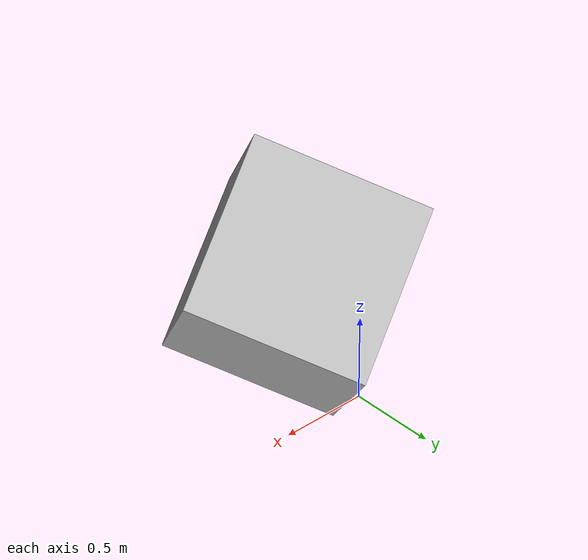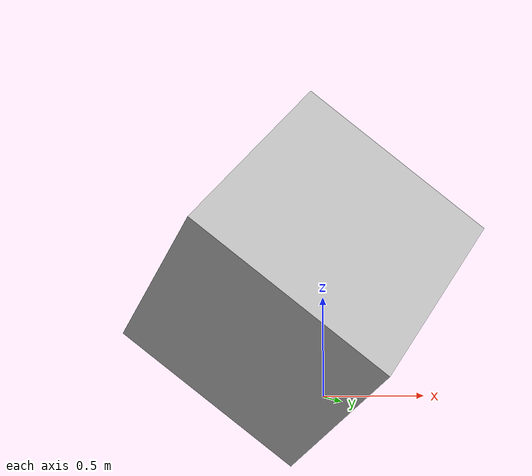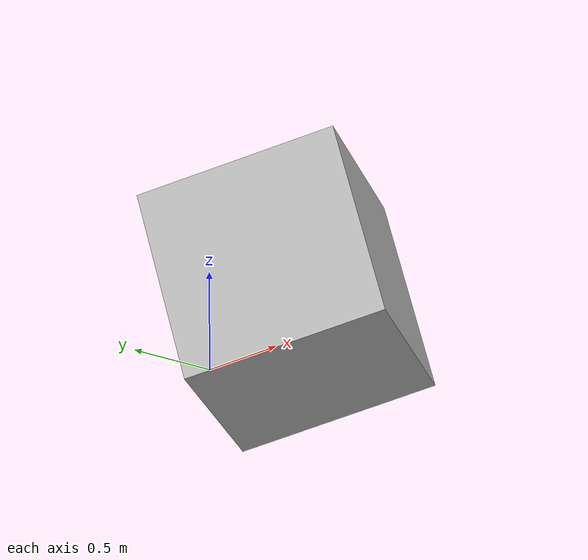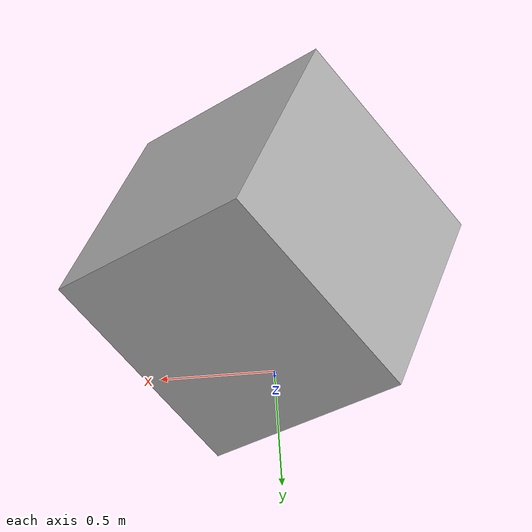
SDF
<?xml version='1.0'?>
<sdf version='1.6'>
		<model name="testlinkb">
			<self_collide>true</self_collide>
			<pose>0.0 0.0 0.0 0.0 0.0 0.0</pose>
			<!-- Start of parts of the pmodel testlinkb -->
			<!-- End of parts of the pmodel testlinkb -->

			<!-- Start of links of the pmodel testlinkb -->
			<!-- link full name is testlinkb::linkB -->
			<link name="1-linkB">
					<pose>0.0 -0.5 0.5 1.0471999645233154 -0.785398006439209 1.0471999645233154</pose>
					<inertial>
						<pose>0.0 0.0 0.0 0.0 0.0 0.0</pose>
						<inertia>
							<ixx>1.0</ixx>
							<ixy>0.0</ixy>
							<ixz>0.0</ixz>
							<iyy>1.0</iyy>
							<iyz>0.0</iyz>
							<izz>1.0</izz>
						</inertia>
						<mass>1.0</mass>
					</inertial>
					<!-- body full name is testlinkb::linkB::bodyB -->
					<collision name="1--bodyB">
						<laser_retro>0.0</laser_retro>
						<pose>0.0 0.0 0.0 0.0 0.0 0.0</pose>
						<geometry>
							<box>
								<size>1.0 1.0 1.0</size>
							</box>
						</geometry>
						<surface>
							<bounce>
								<restitution_coefficient>0.0</restitution_coefficient>
								<threshold>100000.0</threshold>
							</bounce>
							<friction>
								<ode>
									<mu>1.0</mu>
									<mu2>1.0</mu2>
									<fdir1>0.0 0.0 0.0</fdir1>
									<slip1>0.0</slip1>
									<slip2>0.0</slip2>
								</ode>
								<torsional>
									<coefficient>1.0</coefficient>
									<surface_radius>0.0</surface_radius>
								</torsional>
							</friction>
						</surface>
					</collision>
					<visual name="1--bodyB">
						<laser_retro>0.0</laser_retro>
						<pose>0.0 0.0 0.0 0.0 0.0 0.0</pose>
						<geometry>
							<box>
								<size>1.0 1.0 1.0</size>
							</box>
						</geometry>
						<surface>
							<bounce>
								<restitution_coefficient>0.0</restitution_coefficient>
								<threshold>100000.0</threshold>
							</bounce>
							<friction>
								<ode>
									<mu>1.0</mu>
									<mu2>1.0</mu2>
									<fdir1>0.0 0.0 0.0</fdir1>
									<slip1>0.0</slip1>
									<slip2>0.0</slip2>
								</ode>
								<torsional>
									<coefficient>1.0</coefficient>
									<surface_radius>0.0</surface_radius>
								</torsional>
							</friction>
						</surface>
					</visual>
			</link>
			<!-- End of links of the pmodel testlinkb -->

			<!-- Start of joints of the pmodel testlinkb -->
			<!-- End of joints of the pmodel testlinkb -->

			<!-- Start of fixed connections of the pmodel testlinkb -->
			<!-- End of fixed connections of the pmodel testlinkb -->
		</model>
</sdf>
